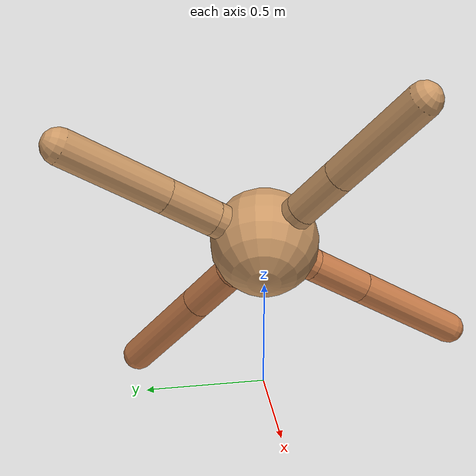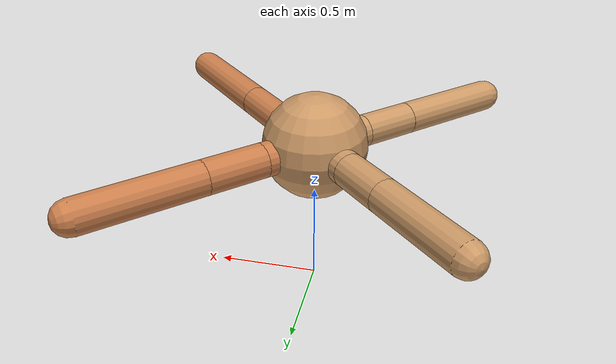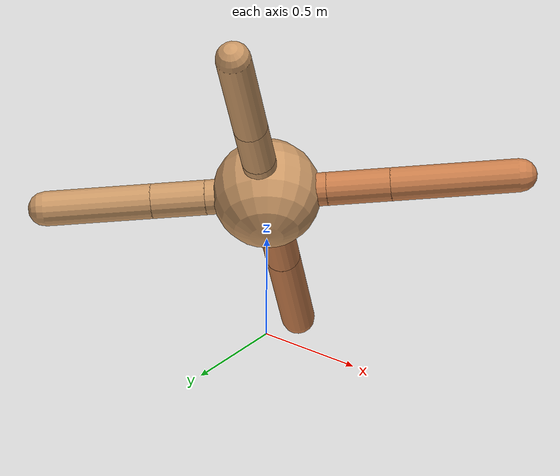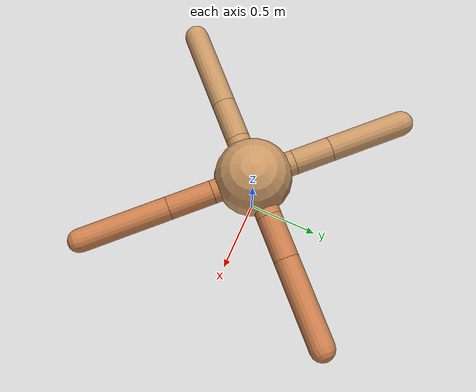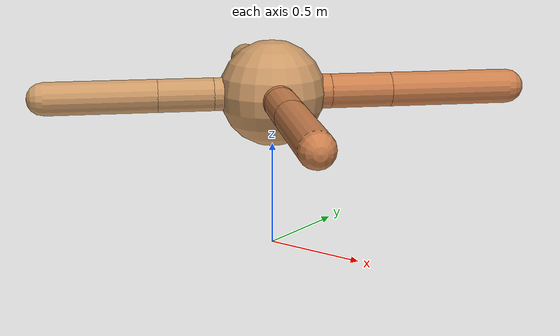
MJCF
<?xml version="1.0" ?>
<mujoco model="ant">

	<compiler angle="degree" coordinate="local" inertiafromgeom="true"/>

	<option integrator="RK4" timestep="0.01"/>

	<custom>

		<numeric data="0.0 0.0 0.55 1.0 0.0 0.0 0.0 0.0 1.0 0.0 -1.0 0.0 -1.0 0.0 1.0" name="init_qpos"/>

	</custom>

	<default>

		<joint armature="1" damping="1" limited="true"/>

		<geom conaffinity="0" condim="3" density="5.0" friction="1.5 0.1 0.1" margin="0.01" rgba="0.8 0.6 0.4 1"/>

	</default>

	<worldbody>

		<body name="torso" pos="0 0 0.75">

			<geom name="torso_geom" pos="0 0 0" size="0.25510468780621043" type="sphere"/>

			<!--joint armature="0" damping="0" limited="false" margin="0.01" name="root" pos="0 0 0" type="free"/-->

			<body name="front_left_leg" pos="0 0 0">

				<geom fromto="0 0 0 0.2 0.2 0" name="aux_1_geom" size="0.08292370995455511" type="capsule" rgba=".8 .5 .3 1"/>

				<body name="aux_1" pos="0.2 0.2 0">

					<joint axis="0 0 1" name="hip_1" pos="0.0 0.0 0.0" range="-40 40" type="hinge"/>

					<geom fromto="0 0 0 0.20845913934271898 0.20845913934271898 0" name="left_leg_geom" size="0.08292370995455511" type="capsule" rgba=".8 .5 .3 1"/>

					<body pos="0.20845913934271898 0.20845913934271898 0" name="front_left_foot">

						<joint axis="-1 1 0" name="ankle_1" pos="0.0 0.0 0.0" range="30 100" type="hinge"/>

						<geom fromto="0 0 0 0.41691827868543796 0.41691827868543796 0" name="left_ankle_geom" size="0.08292370995455511" type="capsule" rgba=".8 .5 .3 1"/>

					</body>

				</body>

			</body>

			<body name="front_right_leg" pos="0 0 0">

				<geom fromto="0 0 0 -0.2 0.2 0" name="aux_2_geom" size="0.08234763244361773" type="capsule"/>

				<body name="aux_2" pos="-0.2 0.2 0">

					<joint axis="0 0 1" name="hip_2" pos="0.0 0.0 0.0" range="-40 40" type="hinge"/>

					<geom fromto="0 0 0 -0.18002818334677909 0.18002818334677909 0" name="right_leg_geom" size="0.08234763244361773" type="capsule"/>

					<body pos="-0.18002818334677909 0.18002818334677909 0" name="front_right_foot">

						<joint axis="1 1 0" name="ankle_2" pos="0.0 0.0 0.0" range="-100 -30" type="hinge"/>

						<geom fromto="0 0 0 -0.36005636669355817 0.36005636669355817 0" name="right_ankle_geom" size="0.08234763244361773" type="capsule"/>

					</body>

				</body>

			</body>

			<body name="left_back_leg" pos="0 0 0">

				<geom fromto="0 0 0 -0.2 -0.2 0" name="aux_3_geom" size="0.07911062739446716" type="capsule"/>

				<body name="aux_3" pos="-0.2 -0.2 0">

					<joint axis="0 0 1" name="hip_3" pos="0.0 0.0 0.0" range="-40 40" type="hinge"/>

					<geom fromto="0 0 0 -0.1876090072458202 -0.1876090072458202 0" name="back_leg_geom" size="0.07911062739446716" type="capsule"/>

					<body pos="-0.1876090072458202 -0.1876090072458202 0" name="left_back_foot">

						<joint axis="-1 1 0" name="ankle_3" pos="0.0 0.0 0.0" range="-100 -30" type="hinge"/>

						<geom fromto="0 0 0 -0.3752180144916404 -0.3752180144916404 0" name="third_ankle_geom" size="0.07911062739446716" type="capsule"/>

					</body>

				</body>

			</body>

			<body name="right_back_leg" pos="0 0 0">

				<geom fromto="0 0 0 0.2 -0.2 0" name="aux_4_geom" size="0.07810819333242326" type="capsule" rgba=".8 .5 .3 1"/>

				<body name="aux_4" pos="0.2 -0.2 0">

					<joint axis="0 0 1" name="hip_4" pos="0.0 0.0 0.0" range="-40 40" type="hinge"/>

					<geom fromto="0 0 0 0.2105015160252501 -0.2105015160252501 0" name="rightback_leg_geom" size="0.07810819333242326" type="capsule" rgba=".8 .5 .3 1"/>

					<body pos="0.2105015160252501 -0.2105015160252501 0" name="right_back_foot">

						<joint axis="1 1 0" name="ankle_4" pos="0.0 0.0 0.0" range="30 100" type="hinge"/>

						<geom fromto="0 0 0 0.4210030320505002 -0.4210030320505002 0" name="fourth_ankle_geom" size="0.07810819333242326" type="capsule" rgba=".8 .5 .3 1"/>

					</body>

				</body>

			</body>

		</body>

	</worldbody>

	<actuator>

		<motor ctrllimited="true" ctrlrange="-1.0 1.0" joint="hip_4" gear="150"/>

		<motor ctrllimited="true" ctrlrange="-1.0 1.0" joint="ankle_4" gear="150"/>

		<motor ctrllimited="true" ctrlrange="-1.0 1.0" joint="hip_1" gear="150"/>

		<motor ctrllimited="true" ctrlrange="-1.0 1.0" joint="ankle_1" gear="150"/>

		<motor ctrllimited="true" ctrlrange="-1.0 1.0" joint="hip_2" gear="150"/>

		<motor ctrllimited="true" ctrlrange="-1.0 1.0" joint="ankle_2" gear="150"/>

		<motor ctrllimited="true" ctrlrange="-1.0 1.0" joint="hip_3" gear="150"/>

		<motor ctrllimited="true" ctrlrange="-1.0 1.0" joint="ankle_3" gear="150"/>

	</actuator>

</mujoco>
